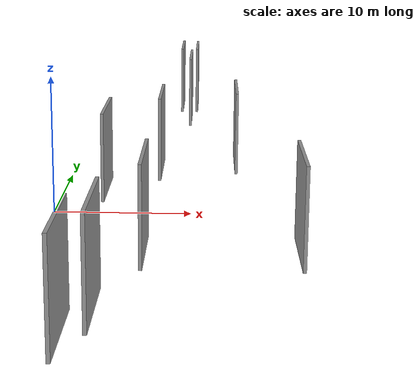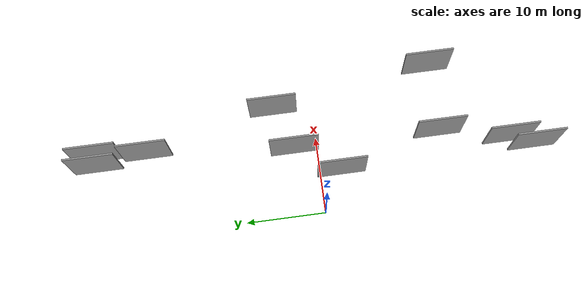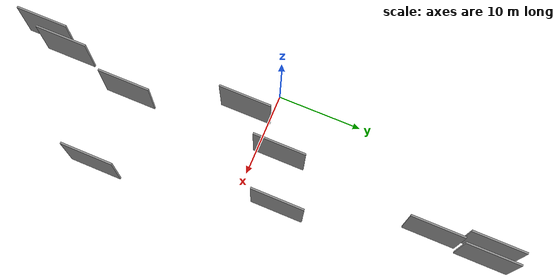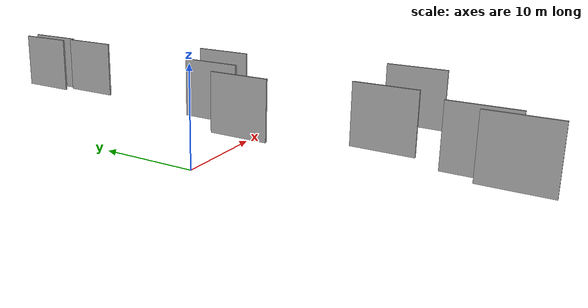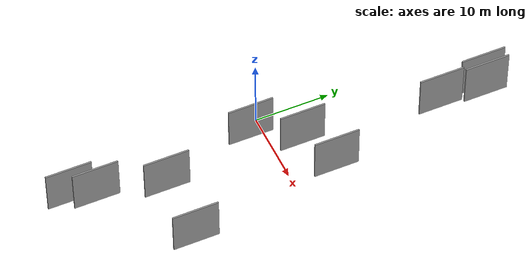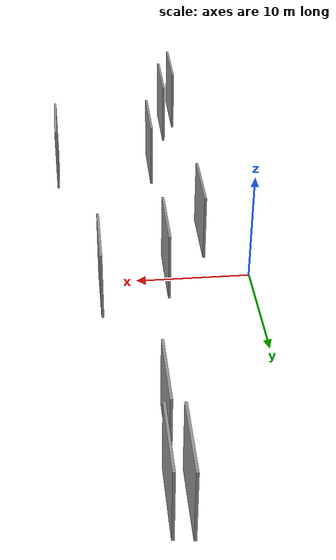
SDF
<sdf version="1.6">
 <world name="default">
  <scene>
   <sky><clouds><speed>12</speed></clouds></sky>
   <ambient>0.4 0.4 0.4 1</ambient>
   <background>0.7 0.7 0.7 1</background>
   <shadows>1</shadows>
  </scene>
  <gravity>0 0 -9.8066</gravity>
  <magnetic_field>6e-06 2.3e-05 -4.2e-05</magnetic_field>
  <physics default="0" name="default_physics" type="ode">
   <ode>
    <solver>
     <type>quick</type>
     <iters>10</iters>
     <sor>1.0</sor>
     <use_dynamic_moi_rescaling>0</use_dynamic_moi_rescaling>
    </solver>
    <constraints>
     <cfm>0</cfm>
     <erp>0.2</erp>
     <contact_max_correcting_vel>100</contact_max_correcting_vel>
     <contact_surface_layer>0.001</contact_surface_layer>
    </constraints>
   </ode>
   <max_step_size>0.004</max_step_size>
   <real_time_factor>1</real_time_factor>
   <real_time_update_rate>250</real_time_update_rate>
  </physics>
  <light name="sun" type="directional">
   <pose>0 0 10 0 0 0</pose>
   <diffuse>0.8 0.8 0.8 1</diffuse>
   <specular>0.2 0.2 0.2 1</specular>
   <attenuation>
    <range>1000</range>
    <constant>0.9</constant>
    <linear>0.01</linear>
    <quadratic>0.001</quadratic>
   </attenuation>
   <direction>-0.5 0.1 -0.9</direction>
  </light>
  <model name="grey_wall_1">
   <static>1</static>
   <pose>9.5014 21.2258 2.5 0.000000 0.000000 1.570796</pose>
   <link name="link">
    <pose>0 0 3.00 0 0 0</pose>
    <collision name="collision"><geometry><box><size>6.00 0.2 6.00</size></box></geometry></collision>
    <visual name="visual">
     <cast_shadows>0</cast_shadows>
     <geometry><box><size>6.00 0.2 6.00</size></box></geometry>
     <material>
      <script>
       <uri>model://grey_wall/materials/scripts</uri>
       <uri>model://grey_wall/materials/textures</uri>
       <name>vrc/grey_wall</name>
      </script>
     </material>
    </visual>
   </link>
  </model>
  <model name="grey_wall_2">
   <static>1</static>
   <pose>13.2576 4.9961 2.5 0.000000 0.000000 1.570796</pose>
   <link name="link">
    <pose>0 0 3.00 0 0 0</pose>
    <collision name="collision"><geometry><box><size>6.00 0.2 6.00</size></box></geometry></collision>
    <visual name="visual">
     <cast_shadows>0</cast_shadows>
     <geometry><box><size>6.00 0.2 6.00</size></box></geometry>
     <material>
      <script>
       <uri>model://grey_wall/materials/scripts</uri>
       <uri>model://grey_wall/materials/textures</uri>
       <name>vrc/grey_wall</name>
      </script>
     </material>
    </visual>
   </link>
  </model>
  <model name="grey_wall_3">
   <static>1</static>
   <pose>4.4090 -26.7748 2.5 0.000000 0.000000 1.570796</pose>
   <link name="link">
    <pose>0 0 3.00 0 0 0</pose>
    <collision name="collision"><geometry><box><size>6.00 0.2 6.00</size></box></geometry></collision>
    <visual name="visual">
     <cast_shadows>0</cast_shadows>
     <geometry><box><size>6.00 0.2 6.00</size></box></geometry>
     <material>
      <script>
       <uri>model://grey_wall/materials/scripts</uri>
       <uri>model://grey_wall/materials/textures</uri>
       <name>vrc/grey_wall</name>
      </script>
     </material>
    </visual>
   </link>
  </model>
  <model name="grey_wall_4">
   <static>1</static>
   <pose>4.1802 -2.5114 2.5 0.000000 0.000000 1.570796</pose>
   <link name="link">
    <pose>0 0 3.00 0 0 0</pose>
    <collision name="collision"><geometry><box><size>6.00 0.2 6.00</size></box></geometry></collision>
    <visual name="visual">
     <cast_shadows>0</cast_shadows>
     <geometry><box><size>6.00 0.2 6.00</size></box></geometry>
     <material>
      <script>
       <uri>model://grey_wall/materials/scripts</uri>
       <uri>model://grey_wall/materials/textures</uri>
       <name>vrc/grey_wall</name>
      </script>
     </material>
    </visual>
   </link>
  </model>
  <model name="grey_wall_5">
   <static>1</static>
   <pose>5.6365 -23.7930 2.5 0.000000 0.000000 1.570796</pose>
   <link name="link">
    <pose>0 0 3.00 0 0 0</pose>
    <collision name="collision"><geometry><box><size>6.00 0.2 6.00</size></box></geometry></collision>
    <visual name="visual">
     <cast_shadows>0</cast_shadows>
     <geometry><box><size>6.00 0.2 6.00</size></box></geometry>
     <material>
      <script>
       <uri>model://grey_wall/materials/scripts</uri>
       <uri>model://grey_wall/materials/textures</uri>
       <name>vrc/grey_wall</name>
      </script>
     </material>
    </visual>
   </link>
  </model>
  <model name="grey_wall_6">
   <static>1</static>
   <pose>7.6069 -15.2719 2.5 0.000000 0.000000 1.570796</pose>
   <link name="link">
    <pose>0 0 3.00 0 0 0</pose>
    <collision name="collision"><geometry><box><size>6.00 0.2 6.00</size></box></geometry></collision>
    <visual name="visual">
     <cast_shadows>0</cast_shadows>
     <geometry><box><size>6.00 0.2 6.00</size></box></geometry>
     <material>
      <script>
       <uri>model://grey_wall/materials/scripts</uri>
       <uri>model://grey_wall/materials/textures</uri>
       <name>vrc/grey_wall</name>
      </script>
     </material>
    </visual>
   </link>
  </model>
  <model name="grey_wall_7">
   <static>1</static>
   <pose>7.7204 2.9371 2.5 0.000000 0.000000 1.570796</pose>
   <link name="link">
    <pose>0 0 3.00 0 0 0</pose>
    <collision name="collision"><geometry><box><size>6.00 0.2 6.00</size></box></geometry></collision>
    <visual name="visual">
     <cast_shadows>0</cast_shadows>
     <geometry><box><size>6.00 0.2 6.00</size></box></geometry>
     <material>
      <script>
       <uri>model://grey_wall/materials/scripts</uri>
       <uri>model://grey_wall/materials/textures</uri>
       <name>vrc/grey_wall</name>
      </script>
     </material>
    </visual>
   </link>
  </model>
  <model name="grey_wall_8">
   <static>1</static>
   <pose>16.5564 -15.2751 2.5 0.000000 0.000000 1.570796</pose>
   <link name="link">
    <pose>0 0 3.00 0 0 0</pose>
    <collision name="collision"><geometry><box><size>6.00 0.2 6.00</size></box></geometry></collision>
    <visual name="visual">
     <cast_shadows>0</cast_shadows>
     <geometry><box><size>6.00 0.2 6.00</size></box></geometry>
     <material>
      <script>
       <uri>model://grey_wall/materials/scripts</uri>
       <uri>model://grey_wall/materials/textures</uri>
       <name>vrc/grey_wall</name>
      </script>
     </material>
    </visual>
   </link>
  </model>
  <model name="grey_wall_9">
   <static>1</static>
   <pose>8.6020 27.4832 2.5 0.000000 0.000000 1.570796</pose>
   <link name="link">
    <pose>0 0 3.00 0 0 0</pose>
    <collision name="collision"><geometry><box><size>6.00 0.2 6.00</size></box></geometry></collision>
    <visual name="visual">
     <cast_shadows>0</cast_shadows>
     <geometry><box><size>6.00 0.2 6.00</size></box></geometry>
     <material>
      <script>
       <uri>model://grey_wall/materials/scripts</uri>
       <uri>model://grey_wall/materials/textures</uri>
       <name>vrc/grey_wall</name>
      </script>
     </material>
    </visual>
   </link>
  </model>
  <model name="grey_wall_10">
   <static>1</static>
   <pose>9.9782 27.3282 2.5 0.000000 0.000000 1.570796</pose>
   <link name="link">
    <pose>0 0 3.00 0 0 0</pose>
    <collision name="collision"><geometry><box><size>6.00 0.2 6.00</size></box></geometry></collision>
    <visual name="visual">
     <cast_shadows>0</cast_shadows>
     <geometry><box><size>6.00 0.2 6.00</size></box></geometry>
     <material>
      <script>
       <uri>model://grey_wall/materials/scripts</uri>
       <uri>model://grey_wall/materials/textures</uri>
       <name>vrc/grey_wall</name>
      </script>
     </material>
    </visual>
   </link>
  </model>
 </world>
</sdf>
